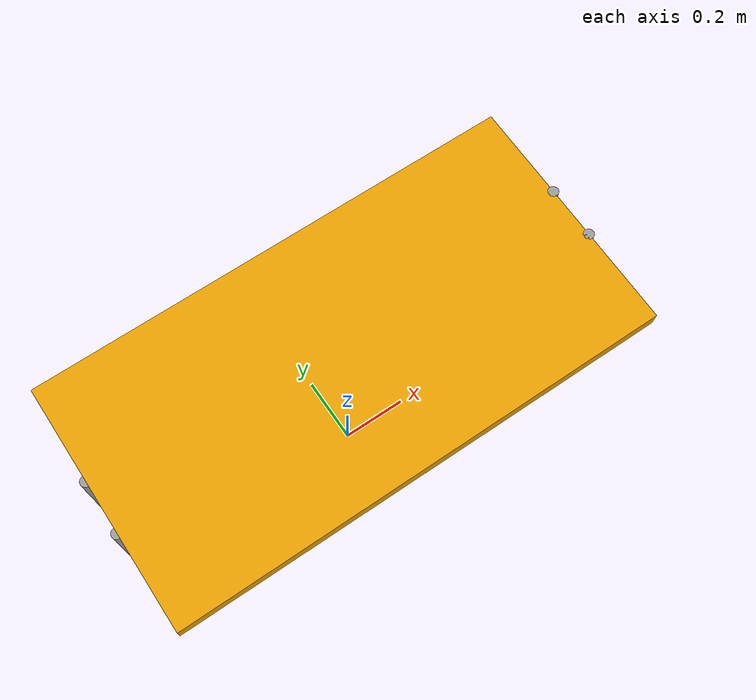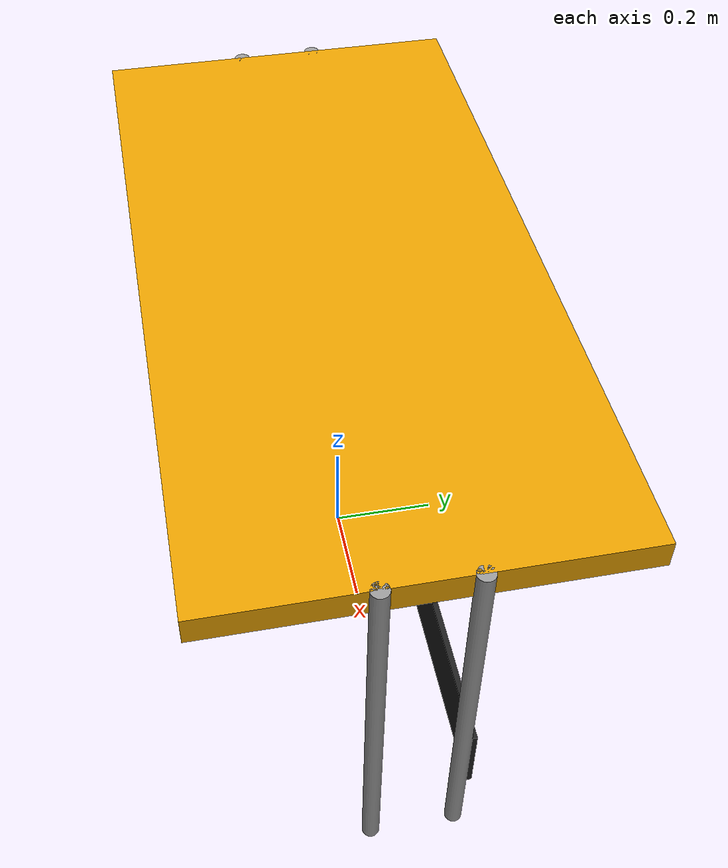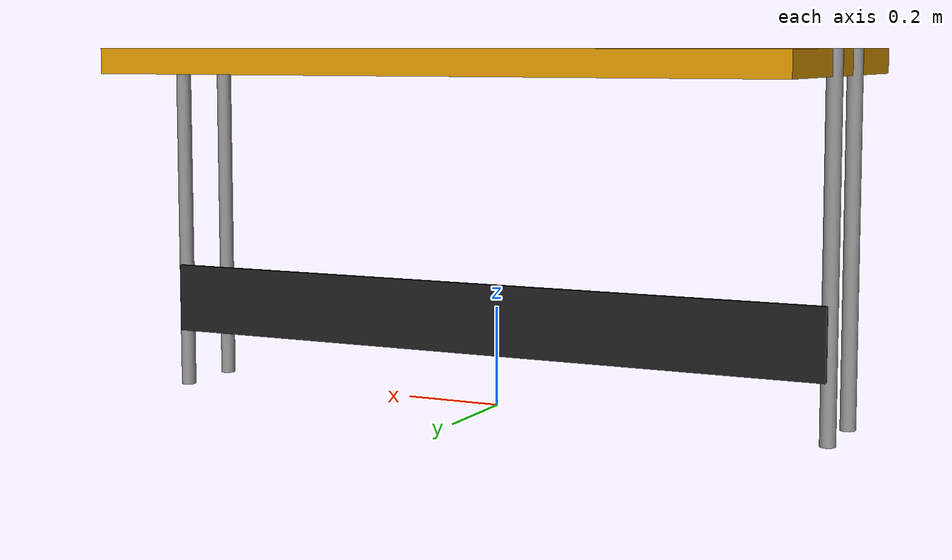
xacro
<?xml version="1.0"?>
<robot xmlns:xacro="http://ros.org/wiki/xacro" name="table">

  <xacro:arg name="width"               default="1.40" />
  <xacro:arg name="depth"               default="0.70" />
  <xacro:arg name="height"              default="0.72" />
  <xacro:arg name="leg_radius"          default="0.015" />
  <xacro:arg name="leg_offset"           default="0.275" />
  <xacro:arg name="table_top_thickness" default="0.05" />
  <xacro:arg name="x"                   default="0.0" />
  <xacro:arg name="y"                   default="0.0" />
  <xacro:arg name="z"                   default="0.0" />
  <xacro:arg name="with_barrier"        default="true" />
  <xacro:property name="width"               value="$(arg width)" />
  <xacro:property name="depth"               value="$(arg depth)" />
  <xacro:property name="height"              value="$(arg height)" />
  <xacro:property name="leg_radius"          value="$(arg leg_radius)" />
  <xacro:property name="leg_offset"           value="$(arg leg_offset)" />
  <xacro:property name="table_top_thickness" value="$(arg table_top_thickness)" />
  <xacro:property name="x"                   value="$(arg x)" />
  <xacro:property name="y"                   value="$(arg y)" />
  <xacro:property name="z"                   value="$(arg z)" />
  <xacro:property name="with_barrier"        value="$(arg with_barrier)" />

  <xacro:property name="barrier_width"       value="${width}" />
  <xacro:property name="barrier_depth"       value="0.01" />
  <xacro:property name="barrier_height"      value="0.14" />
  <xacro:property name="barrier_x"           value="${x}" />
  <xacro:property name="barrier_y"           value="${y + depth/2 + leg_radius - leg_offset + barrier_depth/2}" />
  <xacro:property name="barrier_z"           value="${z + 0.19}" />

  <xacro:include filename="$(find mobipick_gazebo)/urdf/include/table.urdf.xacro" />
  <xacro:table height="${height}" width="${width}" depth="${depth}" leg_radius="${leg_radius}" leg_offset="${leg_offset}" table_top_thickness="${table_top_thickness}" x="${x}" y="${y}" z="${z}" />

  <xacro:if value="${with_barrier}">
    <joint name="barrier_joint" type="fixed" >
      <parent link="table_top_link" />
      <origin xyz="${barrier_x} ${barrier_y} ${barrier_z}" rpy="0 0 0" />
      <child link="barrier_link" />
    </joint>
    <link name="barrier_link">
      <xacro:box_inertial x="${barrier_width}" y="${barrier_depth}" z="${barrier_height}" mass="0.2">
        <origin xyz="0 0 0" />
      </xacro:box_inertial>
      <visual>
        <origin xyz="0 0 0" />
        <geometry>
          <box size="${barrier_width} ${barrier_depth} ${barrier_height}" />
        </geometry>
      </visual>
      <collision>
        <origin xyz="0 0 0" />
        <geometry>
          <box size="${barrier_width} ${barrier_depth} ${barrier_height}" />
        </geometry>
      </collision>
    </link>
    <gazebo reference="barrier_link">
      <material>Gazebo/Black</material>
    </gazebo>
  </xacro:if>
</robot>

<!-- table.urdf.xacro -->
<robot xmlns:xacro="http://ros.org/wiki/xacro">
  <xacro:include filename="$(find mobipick_description)/urdf/common_properties.urdf.xacro" />

  <xacro:macro name="table" params="height:=0.72 width:=0.80 depth:=0.80 leg_radius:=0.02 leg_offset:=0.0 table_top_thickness:=0.05 x:=0.0 y:=0.0 z:=0.0">
    <link name="table_top_link">

      <xacro:box_inertial x="${width}" y="${depth}" z="${table_top_thickness}" mass="10">
        <origin xyz="${x} ${y} ${z + height - table_top_thickness/2}" />
      </xacro:box_inertial>
      <visual>
        <origin xyz="${x} ${y} ${z + height - table_top_thickness/2}" />
        <geometry>
          <box size="${width} ${depth} ${table_top_thickness}" />
        </geometry>
      </visual>
      <collision>
        <origin xyz="${x} ${y} ${z + height - table_top_thickness/2}" />
        <geometry>
          <box size="${width} ${depth} ${table_top_thickness}" />
        </geometry>
      </collision>
    </link>
    <gazebo reference="table_top_link">
      <mu1>1.0</mu1>
      <mu2>1.0</mu2>
      <kp>1000000.0</kp>
      <kd>1.0</kd>
    </gazebo>

    <joint name="leg1_joint" type="fixed" >
      <parent link="table_top_link" />
      <origin xyz="${x + width/2} ${y + depth/2 - leg_offset} ${z + height}" rpy="0 0 0" />
      <child link="leg1_link" />
    </joint>
    <link name="leg1_link">
      <xacro:cylinder_inertial radius="${leg_radius}" length="${height}" mass="2.0">
        <origin xyz="0 0 ${-height/2}" />
      </xacro:cylinder_inertial>
      <visual>
        <origin xyz="0.0 0.0 ${-height/2}" rpy="0 0 0" />
        <geometry>
          <cylinder radius="${leg_radius}" length="${height}" />
        </geometry>
      </visual>
      <collision>
        <origin xyz="0.0 0.0 ${-height/2}" rpy="0.0 0.0 0.0" />
        <geometry>
          <cylinder radius="${leg_radius}" length="${height}" />
        </geometry>
      </collision>
    </link>
    <gazebo reference="leg1_link">
      <material>Gazebo/Grey</material>
    </gazebo>

    <joint name="leg2_joint" type="fixed" >
      <parent link="table_top_link" />
      <origin xyz="${x - width/2} ${y + depth/2 - leg_offset} ${z + height}" rpy="0 0 0" />
      <child link="leg2_link" />
    </joint>
    <link name="leg2_link">
      <xacro:cylinder_inertial radius="${leg_radius}" length="${height}" mass="2.0">
        <origin xyz="0 0 ${-height/2}" />
      </xacro:cylinder_inertial>
      <visual>
        <origin xyz="0.0 0.0 ${-height/2}" rpy="0 0 0" />
        <geometry>
          <cylinder radius="${leg_radius}" length="${height}" />
        </geometry>
      </visual>
      <collision>
        <origin xyz="0.0 0.0 ${-height/2}" rpy="0.0 0.0 0.0" />
        <geometry>
          <cylinder radius="${leg_radius}" length="${height}" />
        </geometry>
      </collision>
    </link>
    <gazebo reference="leg2_link">
      <material>Gazebo/Grey</material>
    </gazebo>

    <joint name="leg3_joint" type="fixed" >
      <parent link="table_top_link" />
      <origin xyz="${x + width/2} ${y - depth/2 + leg_offset} ${z + height}" rpy="0 0 0" />
      <child link="leg3_link" />
    </joint>
    <link name="leg3_link">
      <xacro:cylinder_inertial radius="${leg_radius}" length="${height}" mass="2.0">
        <origin xyz="0 0 ${-height/2}" />
      </xacro:cylinder_inertial>
      <visual>
        <origin xyz="0.0 0.0 ${-height/2}" rpy="0 0 0" />
        <geometry>
          <cylinder radius="${leg_radius}" length="${height}" />
        </geometry>
      </visual>
      <collision>
        <origin xyz="0.0 0.0 ${-height/2}" rpy="0.0 0.0 0.0" />
        <geometry>
          <cylinder radius="${leg_radius}" length="${height}" />
        </geometry>
      </collision>
    </link>
    <gazebo reference="leg3_link">
      <material>Gazebo/Grey</material>
    </gazebo>

    <joint name="leg4_joint" type="fixed" >
      <parent link="table_top_link" />
      <origin xyz="${x - width/2} ${y - depth/2 + leg_offset} ${z + height}" rpy="0 0 0" />
      <child link="leg4_link" />
    </joint>
    <link name="leg4_link">
      <xacro:cylinder_inertial radius="${leg_radius}" length="${height}" mass="2.0">
        <origin xyz="0 0 ${-height/2}" />
      </xacro:cylinder_inertial>
      <visual>
        <origin xyz="0.0 0.0 ${-height/2}" rpy="0 0 0" />
        <geometry>
          <cylinder radius="${leg_radius}" length="${height}" />
        </geometry>
      </visual>
      <collision>
        <origin xyz="0.0 0.0 ${-height/2}" rpy="0.0 0.0 0.0" />
        <geometry>
          <cylinder radius="${leg_radius}" length="${height}" />
        </geometry>
      </collision>
    </link>
    <gazebo reference="leg4_link">
      <material>Gazebo/Grey</material>
    </gazebo>
    <gazebo>
      <static>true</static>
    </gazebo>
  </xacro:macro>
</robot>

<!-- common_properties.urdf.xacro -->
<!--
  Various useful properties such as constants and materials
 -->
<robot name="xacro_properties" xmlns:xacro="http://ros.org/wiki/xacro">
  <!-- #################### RViz materials #################### -->
  <xacro:property name="material_white">
    <material name="white">
      <color rgba="1 1 1 1"/>
    </material>
  </xacro:property>
  <xacro:property name="material_almost_white">
    <material name="almost_white">
      <color rgba="0.9 0.9 0.9 1" />
    </material>
  </xacro:property>
  <xacro:property name="material_grey">
    <material name="grey">
      <color rgba="0.5 0.5 0.5 1"/>
    </material>
  </xacro:property>
  <xacro:property name="material_light_grey">
    <material name="light_grey">
      <color rgba="0.6 0.6 0.6 1"/>
    </material>
  </xacro:property>
  <xacro:property name="material_dark_grey">
    <material name="dark_grey">
      <color rgba="0.3 0.3 0.3 1"/>
    </material>
  </xacro:property>
  <xacro:property name="material_black">
    <material name="black">
      <color rgba="0.1 0.1 0.1 1"/>
    </material>
  </xacro:property>
  <xacro:property name="material_aluminum">
    <material name="aluminum">
      <color rgba="0.8 0.8 0.8 1" />
    </material>
  </xacro:property>
  <xacro:property name="material_silver">
    <material name="silver">
      <color rgba="0.79 0.82 0.93 1" />
    </material>
  </xacro:property>

  <!-- #################### inertials with origin #################### -->
  <!-- see https://secure.wikimedia.org/wikipedia/en/wiki/List_of_moment_of_inertia_tensors -->
  <xacro:macro name="sphere_inertial" params="radius mass *origin">
    <inertial>
      <mass value="${mass}" />
      <xacro:insert_block name="origin" />
      <inertia ixx="${0.4 * mass * radius * radius}" ixy="0.0" ixz="0.0"
        iyy="${0.4 * mass * radius * radius}" iyz="0.0"
        izz="${0.4 * mass * radius * radius}" />
    </inertial>
  </xacro:macro>

  <xacro:macro name="cylinder_inertial" params="radius length mass *origin">
    <inertial>
      <mass value="${mass}" />
      <xacro:insert_block name="origin" />
      <inertia ixx="${0.0833333 * mass * (3 * radius * radius + length * length)}" ixy="0.0" ixz="0.0"
        iyy="${0.0833333 * mass * (3 * radius * radius + length * length)}" iyz="0.0"
        izz="${0.5 * mass * radius * radius}" />
    </inertial>
  </xacro:macro>

  <xacro:macro name="box_inertial" params="x y z mass *origin">
    <inertial>
      <mass value="${mass}" />
      <xacro:insert_block name="origin" />
      <inertia ixx="${0.0833333 * mass * (y*y + z*z)}" ixy="0.0" ixz="0.0"
        iyy="${0.0833333 * mass * (x*x + z*z)}" iyz="0.0"
        izz="${0.0833333 * mass * (x*x + y*y)}" />
    </inertial>
  </xacro:macro>
</robot>
